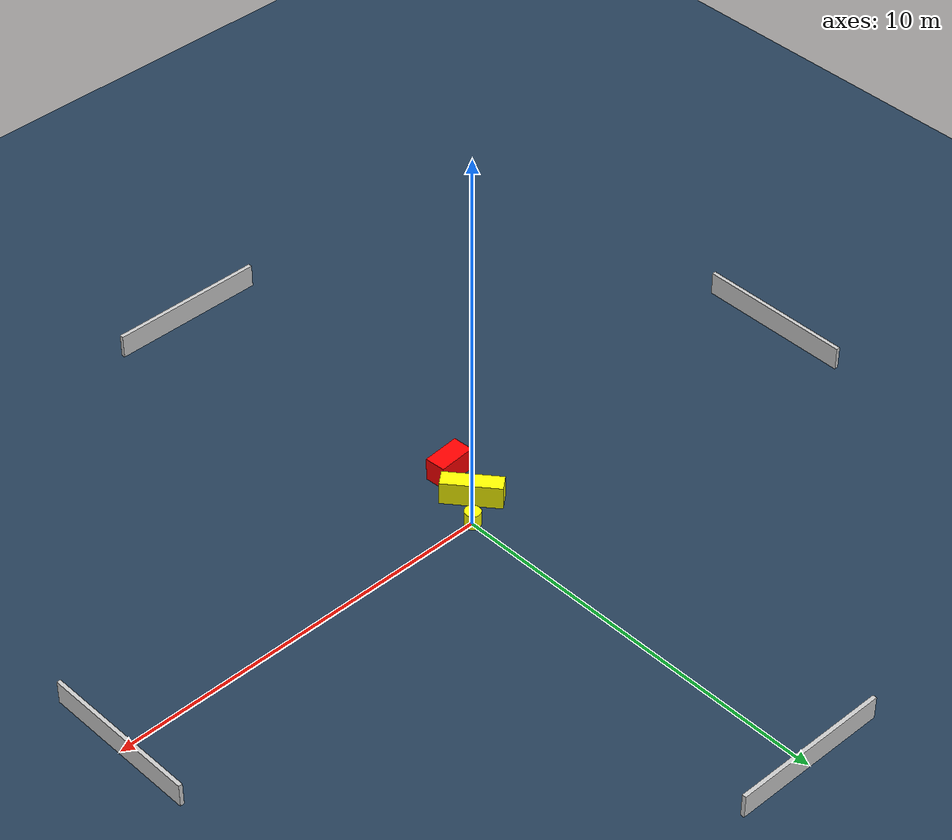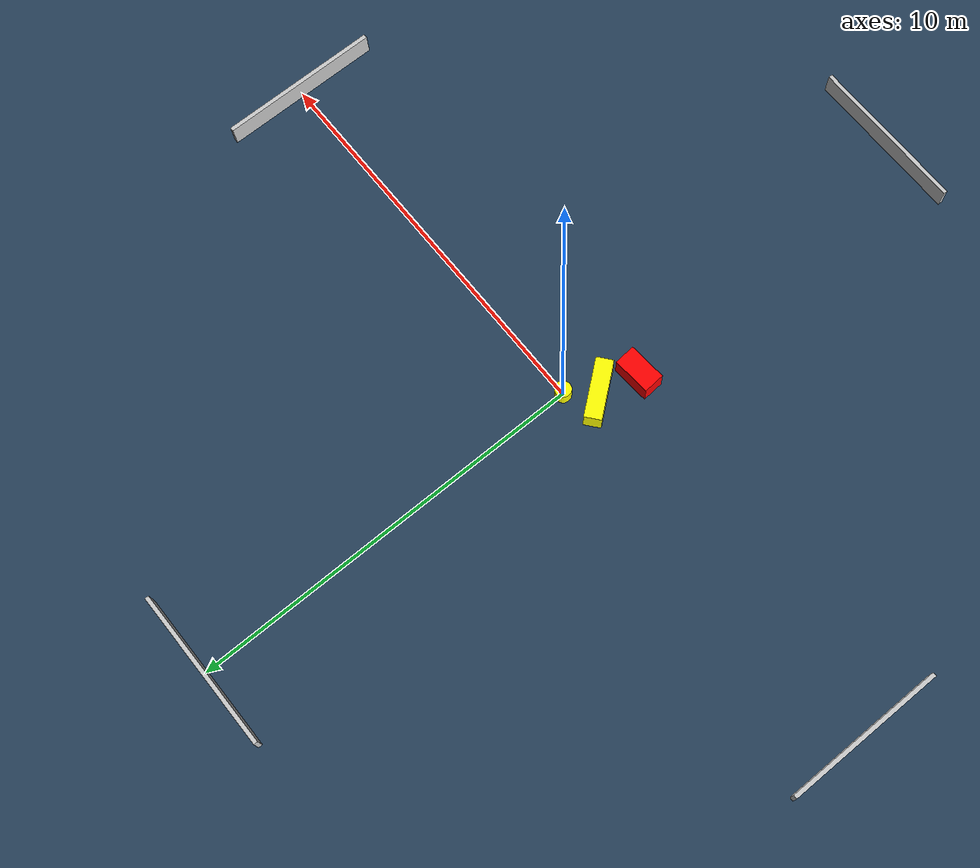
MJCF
<?xml version="1.0" ?>
<mujoco model="generated_environment">
  <option timestep="0.01" integrator="RK4" cone="elliptic"/>
  <default>
    <geom density="1"/>
  </default>
  <asset>
    <texture builtin="gradient" height="3072" name="skybox" rgb1="0.3 0.5 0.7" rgb2="0 0 0" type="skybox" width="512"/>
    <texture builtin="checker" height="300" name="groundplane" rgb1="0.2 0.3 0.4" rgb2="0.1 0.2 0.3" type="2d" width="300"/>
    <material name="groundplane" reflectance="0.2" texrepeat="5 5" texture="groundplane"/>
  </asset>
  <worldbody>
    <light dir="0 0 -1" directional="true" pos="0 0 1.5"/>
    <geom condim="3" friction="0.5 0.005 0.001" material="groundplane" name="floor" pos="0 0 0" size="0 0 0.05" type="plane"/>
    <body name="walls">
      <geom name="wall_1" condim="4" pos="-10.0 0.0 0.3" rgba="0.800000011920929 0.800000011920929 0.800000011920929 1.0" size="0.05 2.0 0.3" type="box"/>
      <geom name="wall_2" condim="4" pos="10.0 0.0 0.3" rgba="0.800000011920929 0.800000011920929 0.800000011920929 1.0" size="0.05 2.0 0.3" type="box"/>
      <geom name="wall_3" condim="4" pos="0.0 -10.0 0.3" rgba="0.800000011920929 0.800000011920929 0.800000011920929 1.0" size="2.0 0.05 0.3" type="box"/>
      <geom name="wall_4" condim="4" pos="0.0 10.0 0.3" rgba="0.800000011920929 0.800000011920929 0.800000011920929 1.0" size="2.0 0.05 0.3" type="box"/>
    </body>
    <body name="robot">
      <joint name="joint_x" type="slide" pos="0 0 0" axis="1 0 0"/>
      <joint name="joint_y" type="slide" pos="0 0 0" axis="0 1 0"/>
      <geom name="robot" type="cylinder" pos="0.0 0.0 0.2" size="0.2 0.2 0.0" mass="5.0" friction="1.0 0.005 0.0001" condim="4" rgba="1.0 1.0 0.0 1.0"/>
    </body>
    <body name="obstacle_1_movable">
      <geom name="obstacle_1_movable" condim="4" pos="-0.5463279188604752 -0.5921362051578507 0.3" euler="0 0 309.1587964279186" friction="0.0 0.005 0.001" rgba="1.0 1.0 0.0 1.0" size="0.7292633862050037 0.21086741697174918 0.3" type="box" mass="0.1"/>
      <joint type="free"/>
    </body>
    <body name="obstacle_2_static">
      <geom name="obstacle_2_static" condim="4" pos="-0.7749667830315042 -1.593116541024124 0.3" euler="0 0 4.306252180013184" friction="0.0 0.005 0.001" rgba="1.0 0.0 0.0 1.0" size="0.48017306539516236 0.26406313137922977 0.3" type="box"/>
    </body>
  </worldbody>
  <actuator>
    <motor name="actuator_x" joint="joint_x" gear="1" ctrlrange="-1 1"/>
    <motor name="actuator_y" joint="joint_y" gear="1" ctrlrange="-1 1"/>
  </actuator>
</mujoco>
